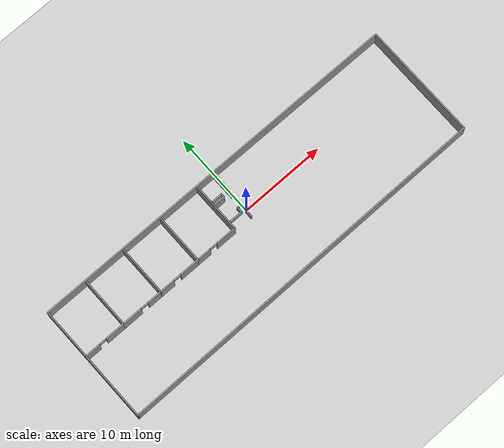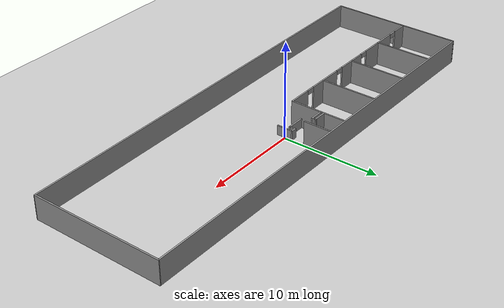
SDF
<sdf version="1.7">
 <world name="default">
  <light name="sun" type="directional">
   <pose>0 0 10 0 -0 0</pose>
   <diffuse>0.8 0.8 0.8 1</diffuse>
   <specular>0.2 0.2 0.2 1</specular>
   <attenuation>
    <range>1000</range>
    <constant>0.9</constant>
    <linear>0.01</linear>
    <quadratic>0.001</quadratic>
   </attenuation>
   <direction>-0.5 0.1 -0.9</direction>
   <spot><inner_angle>0</inner_angle><outer_angle>0</outer_angle><falloff>0</falloff></spot>
  </light>
  <model name="ground_plane">
   <static>1</static>
   <link name="link">
    <collision name="collision">
     <geometry><plane><normal>0 0 1</normal><size>100 100</size></plane></geometry>
     <surface>
      <contact><collide_bitmask>65535</collide_bitmask></contact>
      <friction><ode><mu>100</mu><mu2>50</mu2></ode></friction>
     </surface>
    </collision>
    <visual name="visual">
     <cast_shadows>0</cast_shadows>
     <geometry><plane><normal>0 0 1</normal><size>100 100</size></plane></geometry>
     <material>
      <script><uri>file://media/materials/scripts/gazebo.material</uri><name>Gazebo/Grey</name></script>
     </material>
    </visual>
   </link>
  </model>
  <gravity>0 0 -9.8</gravity>
  <magnetic_field>6e-06 2.3e-05 -4.2e-05</magnetic_field>
  <atmosphere type="adiabatic"/>
  <physics type="ode">
   <max_step_size>0.001</max_step_size>
   <real_time_factor>1</real_time_factor>
   <real_time_update_rate>1000</real_time_update_rate>
  </physics>
  <scene><ambient>0.4 0.4 0.4 1</ambient><background>0.7 0.7 0.7 1</background><shadows>1</shadows></scene>
  <audio><device>default</device></audio>
  <spherical_coordinates>
   <surface_model>EARTH_WGS84</surface_model>
   <latitude_deg>0</latitude_deg>
   <longitude_deg>0</longitude_deg>
   <elevation>0</elevation>
   <heading_deg>0</heading_deg>
  </spherical_coordinates>
  <model name="med_building">
   <link name="Wall_52">
    <pose>1e-06 6.90447 0 0 0 -0.004261</pose>
    <visual name="Wall_52_Visual">
     <pose>0 0 1.25 0 -0 0</pose>
     <geometry><box><size>45 0.15 2.5</size></box></geometry>
     <material>
      <script><uri>file://media/materials/scripts/gazebo.material</uri><name>Gazebo/Grey</name></script>
      <ambient>1 1 1 1</ambient>
      <shader type="pixel"/>
     </material>
     <meta><layer>0</layer></meta>
    </visual>
    <collision name="Wall_52_Collision">
     <pose>0 0 1.25 0 -0 0</pose>
     <geometry><box><size>45 0.15 2.5</size></box></geometry>
     <surface>
      <friction>
       <ode><mu>1</mu><mu2>1</mu2><fdir1>0 0 0</fdir1><slip1>0</slip1><slip2>0</slip2></ode>
       <torsional>
        <coefficient>1</coefficient>
        <patch_radius>0</patch_radius>
        <surface_radius>0</surface_radius>
        <use_patch_radius>1</use_patch_radius>
        <ode><slip>0</slip></ode>
       </torsional>
      </friction>
      <bounce><restitution_coefficient>0</restitution_coefficient><threshold>1e+06</threshold></bounce>
      <contact>
       <collide_without_contact>0</collide_without_contact>
       <collide_without_contact_bitmask>1</collide_without_contact_bitmask>
       <collide_bitmask>1</collide_bitmask>
       <ode>
        <soft_cfm>0</soft_cfm>
        <soft_erp>0.2</soft_erp>
        <kp>1e+13</kp>
        <kd>1</kd>
        <max_vel>0.01</max_vel>
        <min_depth>0</min_depth>
       </ode>
       <bullet>
        <split_impulse>1</split_impulse>
        <split_impulse_penetration_threshold>-0.01</split_impulse_penetration_threshold>
        <soft_cfm>0</soft_cfm>
        <soft_erp>0.2</soft_erp>
        <kp>1e+13</kp>
        <kd>1</kd>
       </bullet>
      </contact>
     </surface>
    </collision>
   </link>
   <link name="Wall_53">
    <pose>22.4252 0.008928 0 0 0 -1.5708</pose>
    <visual name="Wall_53_Visual">
     <pose>0 0 1.25 0 -0 0</pose>
     <geometry><box><size>13.75 0.15 2.5</size></box></geometry>
     <material>
      <script><uri>file://media/materials/scripts/gazebo.material</uri><name>Gazebo/Grey</name></script>
      <ambient>1 1 1 1</ambient>
      <shader type="pixel"/>
     </material>
     <meta><layer>0</layer></meta>
    </visual>
    <collision name="Wall_53_Collision">
     <pose>0 0 1.25 0 -0 0</pose>
     <geometry><box><size>13.75 0.15 2.5</size></box></geometry>
     <surface>
      <friction>
       <ode><mu>1</mu><mu2>1</mu2><fdir1>0 0 0</fdir1><slip1>0</slip1><slip2>0</slip2></ode>
       <torsional>
        <coefficient>1</coefficient>
        <patch_radius>0</patch_radius>
        <surface_radius>0</surface_radius>
        <use_patch_radius>1</use_patch_radius>
        <ode><slip>0</slip></ode>
       </torsional>
      </friction>
      <bounce><restitution_coefficient>0</restitution_coefficient><threshold>1e+06</threshold></bounce>
      <contact>
       <collide_without_contact>0</collide_without_contact>
       <collide_without_contact_bitmask>1</collide_without_contact_bitmask>
       <collide_bitmask>1</collide_bitmask>
       <ode>
        <soft_cfm>0</soft_cfm>
        <soft_erp>0.2</soft_erp>
        <kp>1e+13</kp>
        <kd>1</kd>
        <max_vel>0.01</max_vel>
        <min_depth>0</min_depth>
       </ode>
       <bullet>
        <split_impulse>1</split_impulse>
        <split_impulse_penetration_threshold>-0.01</split_impulse_penetration_threshold>
        <soft_cfm>0</soft_cfm>
        <soft_erp>0.2</soft_erp>
        <kp>1e+13</kp>
        <kd>1</kd>
       </bullet>
      </contact>
     </surface>
    </collision>
   </link>
   <link name="Wall_54">
    <pose>1e-06 -6.89553 0 0 0 -3.13693</pose>
    <visual name="Wall_54_Visual">
     <pose>0 0 1.25 0 -0 0</pose>
     <geometry><box><size>45.0008 0.15 2.5</size></box></geometry>
     <material>
      <script><uri>file://media/materials/scripts/gazebo.material</uri><name>Gazebo/Grey</name></script>
      <ambient>1 1 1 1</ambient>
      <shader type="pixel"/>
     </material>
     <meta><layer>0</layer></meta>
    </visual>
    <collision name="Wall_54_Collision">
     <pose>0 0 1.25 0 -0 0</pose>
     <geometry><box><size>45.0008 0.15 2.5</size></box></geometry>
     <surface>
      <friction>
       <ode><mu>1</mu><mu2>1</mu2><fdir1>0 0 0</fdir1><slip1>0</slip1><slip2>0</slip2></ode>
       <torsional>
        <coefficient>1</coefficient>
        <patch_radius>0</patch_radius>
        <surface_radius>0</surface_radius>
        <use_patch_radius>1</use_patch_radius>
        <ode><slip>0</slip></ode>
       </torsional>
      </friction>
      <bounce><restitution_coefficient>0</restitution_coefficient><threshold>1e+06</threshold></bounce>
      <contact>
       <collide_without_contact>0</collide_without_contact>
       <collide_without_contact_bitmask>1</collide_without_contact_bitmask>
       <collide_bitmask>1</collide_bitmask>
       <ode>
        <soft_cfm>0</soft_cfm>
        <soft_erp>0.2</soft_erp>
        <kp>1e+13</kp>
        <kd>1</kd>
        <max_vel>0.01</max_vel>
        <min_depth>0</min_depth>
       </ode>
       <bullet>
        <split_impulse>1</split_impulse>
        <split_impulse_penetration_threshold>-0.01</split_impulse_penetration_threshold>
        <soft_cfm>0</soft_cfm>
        <soft_erp>0.2</soft_erp>
        <kp>1e+13</kp>
        <kd>1</kd>
       </bullet>
      </contact>
     </surface>
    </collision>
   </link>
   <link name="Wall_55">
    <pose>-22.4252 1.5e-05 0 0 -0 1.5708</pose>
    <visual name="Wall_55_Visual">
     <pose>0 0 1.25 0 -0 0</pose>
     <geometry><box><size>14.15 0.15 2.5</size></box></geometry>
     <material>
      <script><uri>file://media/materials/scripts/gazebo.material</uri><name>Gazebo/Grey</name></script>
      <ambient>1 1 1 1</ambient>
      <shader type="pixel"/>
     </material>
     <meta><layer>0</layer></meta>
    </visual>
    <collision name="Wall_55_Collision">
     <pose>0 0 1.25 0 -0 0</pose>
     <geometry><box><size>14.15 0.15 2.5</size></box></geometry>
     <surface>
      <friction>
       <ode><mu>1</mu><mu2>1</mu2><fdir1>0 0 0</fdir1><slip1>0</slip1><slip2>0</slip2></ode>
       <torsional>
        <coefficient>1</coefficient>
        <patch_radius>0</patch_radius>
        <surface_radius>0</surface_radius>
        <use_patch_radius>1</use_patch_radius>
        <ode><slip>0</slip></ode>
       </torsional>
      </friction>
      <bounce><restitution_coefficient>0</restitution_coefficient><threshold>1e+06</threshold></bounce>
      <contact>
       <collide_without_contact>0</collide_without_contact>
       <collide_without_contact_bitmask>1</collide_without_contact_bitmask>
       <collide_bitmask>1</collide_bitmask>
       <ode>
        <soft_cfm>0</soft_cfm>
        <soft_erp>0.2</soft_erp>
        <kp>1e+13</kp>
        <kd>1</kd>
        <max_vel>0.01</max_vel>
        <min_depth>0</min_depth>
       </ode>
       <bullet>
        <split_impulse>1</split_impulse>
        <split_impulse_penetration_threshold>-0.01</split_impulse_penetration_threshold>
        <soft_cfm>0</soft_cfm>
        <soft_erp>0.2</soft_erp>
        <kp>1e+13</kp>
        <kd>1</kd>
       </bullet>
      </contact>
     </surface>
    </collision>
   </link>
   <link name="Wall_57">
    <pose>-19.9252 1.00002 0 0 -0 0</pose>
    <visual name="Wall_57_Visual_0">
     <pose>-1.64568 0 1.25 0 -0 0</pose>
     <geometry><box><size>1.85863 0.15 2.5</size></box></geometry>
     <material>
      <script><uri>file://media/materials/scripts/gazebo.material</uri><name>Gazebo/Grey</name></script>
      <ambient>1 1 1 1</ambient>
      <shader type="pixel"/>
     </material>
     <meta><layer>0</layer></meta>
    </visual>
    <visual name="Wall_57_Visual_1">
     <pose>1.37932 0 1.25 0 -0 0</pose>
     <geometry><box><size>2.39137 0.15 2.5</size></box></geometry>
     <material>
      <script><uri>file://media/materials/scripts/gazebo.material</uri><name>Gazebo/Grey</name></script>
      <ambient>1 1 1 1</ambient>
      <shader type="pixel"/>
     </material>
     <meta><layer>0</layer></meta>
    </visual>
    <visual name="Wall_57_Visual_2">
     <pose>-0.266367 0 2.25 0 -0 0</pose>
     <geometry><box><size>0.9 0.15 0.5</size></box></geometry>
     <material>
      <script><uri>file://media/materials/scripts/gazebo.material</uri><name>Gazebo/Grey</name></script>
      <ambient>1 1 1 1</ambient>
      <shader type="pixel"/>
     </material>
     <meta><layer>0</layer></meta>
    </visual>
    <collision name="Wall_57_Collision_0">
     <pose>-1.64568 0 1.25 0 -0 0</pose>
     <geometry><box><size>1.85863 0.15 2.5</size></box></geometry>
     <surface>
      <friction>
       <ode><mu>1</mu><mu2>1</mu2><fdir1>0 0 0</fdir1><slip1>0</slip1><slip2>0</slip2></ode>
       <torsional>
        <coefficient>1</coefficient>
        <patch_radius>0</patch_radius>
        <surface_radius>0</surface_radius>
        <use_patch_radius>1</use_patch_radius>
        <ode><slip>0</slip></ode>
       </torsional>
      </friction>
      <bounce><restitution_coefficient>0</restitution_coefficient><threshold>1e+06</threshold></bounce>
      <contact>
       <collide_without_contact>0</collide_without_contact>
       <collide_without_contact_bitmask>1</collide_without_contact_bitmask>
       <collide_bitmask>1</collide_bitmask>
       <ode>
        <soft_cfm>0</soft_cfm>
        <soft_erp>0.2</soft_erp>
        <kp>1e+13</kp>
        <kd>1</kd>
        <max_vel>0.01</max_vel>
        <min_depth>0</min_depth>
       </ode>
       <bullet>
        <split_impulse>1</split_impulse>
        <split_impulse_penetration_threshold>-0.01</split_impulse_penetration_threshold>
        <soft_cfm>0</soft_cfm>
        <soft_erp>0.2</soft_erp>
        <kp>1e+13</kp>
        <kd>1</kd>
       </bullet>
      </contact>
     </surface>
    </collision>
    <collision name="Wall_57_Collision_1">
     <pose>1.37932 0 1.25 0 -0 0</pose>
     <geometry><box><size>2.39137 0.15 2.5</size></box></geometry>
     <surface>
      <friction>
       <ode><mu>1</mu><mu2>1</mu2><fdir1>0 0 0</fdir1><slip1>0</slip1><slip2>0</slip2></ode>
       <torsional>
        <coefficient>1</coefficient>
        <patch_radius>0</patch_radius>
        <surface_radius>0</surface_radius>
        <use_patch_radius>1</use_patch_radius>
        <ode><slip>0</slip></ode>
       </torsional>
      </friction>
      <bounce><restitution_coefficient>0</restitution_coefficient><threshold>1e+06</threshold></bounce>
      <contact>
       <collide_without_contact>0</collide_without_contact>
       <collide_without_contact_bitmask>1</collide_without_contact_bitmask>
       <collide_bitmask>1</collide_bitmask>
       <ode>
        <soft_cfm>0</soft_cfm>
        <soft_erp>0.2</soft_erp>
        <kp>1e+13</kp>
        <kd>1</kd>
        <max_vel>0.01</max_vel>
        <min_depth>0</min_depth>
       </ode>
       <bullet>
        <split_impulse>1</split_impulse>
        <split_impulse_penetration_threshold>-0.01</split_impulse_penetration_threshold>
        <soft_cfm>0</soft_cfm>
        <soft_erp>0.2</soft_erp>
        <kp>1e+13</kp>
        <kd>1</kd>
       </bullet>
      </contact>
     </surface>
    </collision>
    <collision name="Wall_57_Collision_2">
     <pose>-0.266367 0 2.25 0 -0 0</pose>
     <geometry><box><size>0.9 0.15 0.5</size></box></geometry>
     <surface>
      <friction>
       <ode><mu>1</mu><mu2>1</mu2><fdir1>0 0 0</fdir1><slip1>0</slip1><slip2>0</slip2></ode>
       <torsional>
        <coefficient>1</coefficient>
        <patch_radius>0</patch_radius>
        <surface_radius>0</surface_radius>
        <use_patch_radius>1</use_patch_radius>
        <ode><slip>0</slip></ode>
       </torsional>
      </friction>
      <bounce><restitution_coefficient>0</restitution_coefficient><threshold>1e+06</threshold></bounce>
      <contact>
       <collide_without_contact>0</collide_without_contact>
       <collide_without_contact_bitmask>1</collide_without_contact_bitmask>
       <collide_bitmask>1</collide_bitmask>
       <ode>
        <soft_cfm>0</soft_cfm>
        <soft_erp>0.2</soft_erp>
        <kp>1e+13</kp>
        <kd>1</kd>
        <max_vel>0.01</max_vel>
        <min_depth>0</min_depth>
       </ode>
       <bullet>
        <split_impulse>1</split_impulse>
        <split_impulse_penetration_threshold>-0.01</split_impulse_penetration_threshold>
        <soft_cfm>0</soft_cfm>
        <soft_erp>0.2</soft_erp>
        <kp>1e+13</kp>
        <kd>1</kd>
       </bullet>
      </contact>
     </surface>
    </collision>
   </link>
   <link name="Wall_58">
    <pose>-17.4252 3.92502 0 0 -0 1.5708</pose>
    <visual name="Wall_58_Visual">
     <pose>0 0 1.25 0 -0 0</pose>
     <geometry><box><size>6 0.15 2.5</size></box></geometry>
     <material>
      <script><uri>file://media/materials/scripts/gazebo.material</uri><name>Gazebo/Grey</name></script>
      <ambient>1 1 1 1</ambient>
      <shader type="pixel"/>
     </material>
     <meta><layer>0</layer></meta>
    </visual>
    <collision name="Wall_58_Collision">
     <pose>0 0 1.25 0 -0 0</pose>
     <geometry><box><size>6 0.15 2.5</size></box></geometry>
     <surface>
      <friction>
       <ode><mu>1</mu><mu2>1</mu2><fdir1>0 0 0</fdir1><slip1>0</slip1><slip2>0</slip2></ode>
       <torsional>
        <coefficient>1</coefficient>
        <patch_radius>0</patch_radius>
        <surface_radius>0</surface_radius>
        <use_patch_radius>1</use_patch_radius>
        <ode><slip>0</slip></ode>
       </torsional>
      </friction>
      <bounce><restitution_coefficient>0</restitution_coefficient><threshold>1e+06</threshold></bounce>
      <contact>
       <collide_without_contact>0</collide_without_contact>
       <collide_without_contact_bitmask>1</collide_without_contact_bitmask>
       <collide_bitmask>1</collide_bitmask>
       <ode>
        <soft_cfm>0</soft_cfm>
        <soft_erp>0.2</soft_erp>
        <kp>1e+13</kp>
        <kd>1</kd>
        <max_vel>0.01</max_vel>
        <min_depth>0</min_depth>
       </ode>
       <bullet>
        <split_impulse>1</split_impulse>
        <split_impulse_penetration_threshold>-0.01</split_impulse_penetration_threshold>
        <soft_cfm>0</soft_cfm>
        <soft_erp>0.2</soft_erp>
        <kp>1e+13</kp>
        <kd>1</kd>
       </bullet>
      </contact>
     </surface>
    </collision>
   </link>
   <link name="Wall_60">
    <pose>-14.9252 1.00002 0 0 -0 0</pose>
    <visual name="Wall_60_Visual_0">
     <pose>-1.36037 0 1.25 0 -0 0</pose>
     <geometry><box><size>2.42925 0.15 2.5</size></box></geometry>
     <material>
      <script><uri>file://media/materials/scripts/gazebo.material</uri><name>Gazebo/Grey</name></script>
      <ambient>1 1 1 1</ambient>
      <shader type="pixel"/>
     </material>
     <meta><layer>0</layer></meta>
    </visual>
    <visual name="Wall_60_Visual_1">
     <pose>1.66463 0 1.25 0 -0 0</pose>
     <geometry><box><size>1.82075 0.15 2.5</size></box></geometry>
     <material>
      <script><uri>file://media/materials/scripts/gazebo.material</uri><name>Gazebo/Grey</name></script>
      <ambient>1 1 1 1</ambient>
      <shader type="pixel"/>
     </material>
     <meta><layer>0</layer></meta>
    </visual>
    <visual name="Wall_60_Visual_2">
     <pose>0.304252 0 2.25 0 -0 0</pose>
     <geometry><box><size>0.9 0.15 0.5</size></box></geometry>
     <material>
      <script><uri>file://media/materials/scripts/gazebo.material</uri><name>Gazebo/Grey</name></script>
      <ambient>1 1 1 1</ambient>
      <shader type="pixel"/>
     </material>
     <meta><layer>0</layer></meta>
    </visual>
    <collision name="Wall_60_Collision_0">
     <pose>-1.36037 0 1.25 0 -0 0</pose>
     <geometry><box><size>2.42925 0.15 2.5</size></box></geometry>
     <surface>
      <friction>
       <ode><mu>1</mu><mu2>1</mu2><fdir1>0 0 0</fdir1><slip1>0</slip1><slip2>0</slip2></ode>
       <torsional>
        <coefficient>1</coefficient>
        <patch_radius>0</patch_radius>
        <surface_radius>0</surface_radius>
        <use_patch_radius>1</use_patch_radius>
        <ode><slip>0</slip></ode>
       </torsional>
      </friction>
      <bounce><restitution_coefficient>0</restitution_coefficient><threshold>1e+06</threshold></bounce>
      <contact>
       <collide_without_contact>0</collide_without_contact>
       <collide_without_contact_bitmask>1</collide_without_contact_bitmask>
       <collide_bitmask>1</collide_bitmask>
       <ode>
        <soft_cfm>0</soft_cfm>
        <soft_erp>0.2</soft_erp>
        <kp>1e+13</kp>
        <kd>1</kd>
        <max_vel>0.01</max_vel>
        <min_depth>0</min_depth>
       </ode>
       <bullet>
        <split_impulse>1</split_impulse>
        <split_impulse_penetration_threshold>-0.01</split_impulse_penetration_threshold>
        <soft_cfm>0</soft_cfm>
        <soft_erp>0.2</soft_erp>
        <kp>1e+13</kp>
        <kd>1</kd>
       </bullet>
      </contact>
     </surface>
    </collision>
    <collision name="Wall_60_Collision_1">
     <pose>1.66463 0 1.25 0 -0 0</pose>
     <geometry><box><size>1.82075 0.15 2.5</size></box></geometry>
     <surface>
      <friction>
       <ode><mu>1</mu><mu2>1</mu2><fdir1>0 0 0</fdir1><slip1>0</slip1><slip2>0</slip2></ode>
       <torsional>
        <coefficient>1</coefficient>
        <patch_radius>0</patch_radius>
        <surface_radius>0</surface_radius>
        <use_patch_radius>1</use_patch_radius>
        <ode><slip>0</slip></ode>
       </torsional>
      </friction>
      <bounce><restitution_coefficient>0</restitution_coefficient><threshold>1e+06</threshold></bounce>
      <contact>
       <collide_without_contact>0</collide_without_contact>
       <collide_without_contact_bitmask>1</collide_without_contact_bitmask>
       <collide_bitmask>1</collide_bitmask>
       <ode>
        <soft_cfm>0</soft_cfm>
        <soft_erp>0.2</soft_erp>
        <kp>1e+13</kp>
        <kd>1</kd>
        <max_vel>0.01</max_vel>
        <min_depth>0</min_depth>
       </ode>
       <bullet>
        <split_impulse>1</split_impulse>
        <split_impulse_penetration_threshold>-0.01</split_impulse_penetration_threshold>
        <soft_cfm>0</soft_cfm>
        <soft_erp>0.2</soft_erp>
        <kp>1e+13</kp>
        <kd>1</kd>
       </bullet>
      </contact>
     </surface>
    </collision>
    <collision name="Wall_60_Collision_2">
     <pose>0.304252 0 2.25 0 -0 0</pose>
     <geometry><box><size>0.9 0.15 0.5</size></box></geometry>
     <surface>
      <friction>
       <ode><mu>1</mu><mu2>1</mu2><fdir1>0 0 0</fdir1><slip1>0</slip1><slip2>0</slip2></ode>
       <torsional>
        <coefficient>1</coefficient>
        <patch_radius>0</patch_radius>
        <surface_radius>0</surface_radius>
        <use_patch_radius>1</use_patch_radius>
        <ode><slip>0</slip></ode>
       </torsional>
      </friction>
      <bounce><restitution_coefficient>0</restitution_coefficient><threshold>1e+06</threshold></bounce>
      <contact>
       <collide_without_contact>0</collide_without_contact>
       <collide_without_contact_bitmask>1</collide_without_contact_bitmask>
       <collide_bitmask>1</collide_bitmask>
       <ode>
        <soft_cfm>0</soft_cfm>
        <soft_erp>0.2</soft_erp>
        <kp>1e+13</kp>
        <kd>1</kd>
        <max_vel>0.01</max_vel>
        <min_depth>0</min_depth>
       </ode>
       <bullet>
        <split_impulse>1</split_impulse>
        <split_impulse_penetration_threshold>-0.01</split_impulse_penetration_threshold>
        <soft_cfm>0</soft_cfm>
        <soft_erp>0.2</soft_erp>
        <kp>1e+13</kp>
        <kd>1</kd>
       </bullet>
      </contact>
     </surface>
    </collision>
   </link>
   <link name="Wall_61">
    <pose>-12.4252 3.92502 0 0 -0 1.5708</pose>
    <visual name="Wall_61_Visual">
     <pose>0 0 1.25 0 -0 0</pose>
     <geometry><box><size>6 0.15 2.5</size></box></geometry>
     <material>
      <script><uri>file://media/materials/scripts/gazebo.material</uri><name>Gazebo/Grey</name></script>
      <ambient>1 1 1 1</ambient>
      <shader type="pixel"/>
     </material>
     <meta><layer>0</layer></meta>
    </visual>
    <collision name="Wall_61_Collision">
     <pose>0 0 1.25 0 -0 0</pose>
     <geometry><box><size>6 0.15 2.5</size></box></geometry>
     <surface>
      <friction>
       <ode><mu>1</mu><mu2>1</mu2><fdir1>0 0 0</fdir1><slip1>0</slip1><slip2>0</slip2></ode>
       <torsional>
        <coefficient>1</coefficient>
        <patch_radius>0</patch_radius>
        <surface_radius>0</surface_radius>
        <use_patch_radius>1</use_patch_radius>
        <ode><slip>0</slip></ode>
       </torsional>
      </friction>
      <bounce><restitution_coefficient>0</restitution_coefficient><threshold>1e+06</threshold></bounce>
      <contact>
       <collide_without_contact>0</collide_without_contact>
       <collide_without_contact_bitmask>1</collide_without_contact_bitmask>
       <collide_bitmask>1</collide_bitmask>
       <ode>
        <soft_cfm>0</soft_cfm>
        <soft_erp>0.2</soft_erp>
        <kp>1e+13</kp>
        <kd>1</kd>
        <max_vel>0.01</max_vel>
        <min_depth>0</min_depth>
       </ode>
       <bullet>
        <split_impulse>1</split_impulse>
        <split_impulse_penetration_threshold>-0.01</split_impulse_penetration_threshold>
        <soft_cfm>0</soft_cfm>
        <soft_erp>0.2</soft_erp>
        <kp>1e+13</kp>
        <kd>1</kd>
       </bullet>
      </contact>
     </surface>
    </collision>
   </link>
   <link name="Wall_63">
    <pose>-9.92516 1.00002 0 0 -0 0</pose>
    <visual name="Wall_63_Visual_0">
     <pose>-1.6625 0 1.25 0 -0 0</pose>
     <geometry><box><size>1.825 0.15 2.5</size></box></geometry>
     <material>
      <script><uri>file://media/materials/scripts/gazebo.material</uri><name>Gazebo/Grey</name></script>
      <ambient>1 1 1 1</ambient>
      <shader type="pixel"/>
     </material>
     <meta><layer>0</layer></meta>
    </visual>
    <visual name="Wall_63_Visual_1">
     <pose>1.3625 0 1.25 0 -0 0</pose>
     <geometry><box><size>2.425 0.15 2.5</size></box></geometry>
     <material>
      <script><uri>file://media/materials/scripts/gazebo.material</uri><name>Gazebo/Grey</name></script>
      <ambient>1 1 1 1</ambient>
      <shader type="pixel"/>
     </material>
     <meta><layer>0</layer></meta>
    </visual>
    <visual name="Wall_63_Visual_2">
     <pose>-0.3 0 2.25 0 -0 0</pose>
     <geometry><box><size>0.9 0.15 0.5</size></box></geometry>
     <material>
      <script><uri>file://media/materials/scripts/gazebo.material</uri><name>Gazebo/Grey</name></script>
      <ambient>1 1 1 1</ambient>
      <shader type="pixel"/>
     </material>
     <meta><layer>0</layer></meta>
    </visual>
    <collision name="Wall_63_Collision_0">
     <pose>-1.6625 0 1.25 0 -0 0</pose>
     <geometry><box><size>1.825 0.15 2.5</size></box></geometry>
     <surface>
      <friction>
       <ode><mu>1</mu><mu2>1</mu2><fdir1>0 0 0</fdir1><slip1>0</slip1><slip2>0</slip2></ode>
       <torsional>
        <coefficient>1</coefficient>
        <patch_radius>0</patch_radius>
        <surface_radius>0</surface_radius>
        <use_patch_radius>1</use_patch_radius>
        <ode><slip>0</slip></ode>
       </torsional>
      </friction>
      <bounce><restitution_coefficient>0</restitution_coefficient><threshold>1e+06</threshold></bounce>
      <contact>
       <collide_without_contact>0</collide_without_contact>
       <collide_without_contact_bitmask>1</collide_without_contact_bitmask>
       <collide_bitmask>1</collide_bitmask>
       <ode>
        <soft_cfm>0</soft_cfm>
        <soft_erp>0.2</soft_erp>
        <kp>1e+13</kp>
        <kd>1</kd>
        <max_vel>0.01</max_vel>
        <min_depth>0</min_depth>
       </ode>
       <bullet>
        <split_impulse>1</split_impulse>
        <split_impulse_penetration_threshold>-0.01</split_impulse_penetration_threshold>
        <soft_cfm>0</soft_cfm>
        <soft_erp>0.2</soft_erp>
        <kp>1e+13</kp>
        <kd>1</kd>
       </bullet>
      </contact>
     </surface>
    </collision>
    <collision name="Wall_63_Collision_1">
     <pose>1.3625 0 1.25 0 -0 0</pose>
     <geometry><box><size>2.425 0.15 2.5</size></box></geometry>
     <surface>
      <friction>
       <ode><mu>1</mu><mu2>1</mu2><fdir1>0 0 0</fdir1><slip1>0</slip1><slip2>0</slip2></ode>
       <torsional>
        <coefficient>1</coefficient>
        <patch_radius>0</patch_radius>
        <surface_radius>0</surface_radius>
        <use_patch_radius>1</use_patch_radius>
        <ode><slip>0</slip></ode>
       </torsional>
      </friction>
      <bounce><restitution_coefficient>0</restitution_coefficient><threshold>1e+06</threshold></bounce>
      <contact>
       <collide_without_contact>0</collide_without_contact>
       <collide_without_contact_bitmask>1</collide_without_contact_bitmask>
       <collide_bitmask>1</collide_bitmask>
       <ode>
        <soft_cfm>0</soft_cfm>
        <soft_erp>0.2</soft_erp>
        <kp>1e+13</kp>
        <kd>1</kd>
        <max_vel>0.01</max_vel>
        <min_depth>0</min_depth>
       </ode>
       <bullet>
        <split_impulse>1</split_impulse>
        <split_impulse_penetration_threshold>-0.01</split_impulse_penetration_threshold>
        <soft_cfm>0</soft_cfm>
        <soft_erp>0.2</soft_erp>
        <kp>1e+13</kp>
        <kd>1</kd>
       </bullet>
      </contact>
     </surface>
    </collision>
    <collision name="Wall_63_Collision_2">
     <pose>-0.3 0 2.25 0 -0 0</pose>
     <geometry><box><size>0.9 0.15 0.5</size></box></geometry>
     <surface>
      <friction>
       <ode><mu>1</mu><mu2>1</mu2><fdir1>0 0 0</fdir1><slip1>0</slip1><slip2>0</slip2></ode>
       <torsional>
        <coefficient>1</coefficient>
        <patch_radius>0</patch_radius>
        <surface_radius>0</surface_radius>
        <use_patch_radius>1</use_patch_radius>
        <ode><slip>0</slip></ode>
       </torsional>
      </friction>
      <bounce><restitution_coefficient>0</restitution_coefficient><threshold>1e+06</threshold></bounce>
      <contact>
       <collide_without_contact>0</collide_without_contact>
       <collide_without_contact_bitmask>1</collide_without_contact_bitmask>
       <collide_bitmask>1</collide_bitmask>
       <ode>
        <soft_cfm>0</soft_cfm>
        <soft_erp>0.2</soft_erp>
        <kp>1e+13</kp>
        <kd>1</kd>
        <max_vel>0.01</max_vel>
        <min_depth>0</min_depth>
       </ode>
       <bullet>
        <split_impulse>1</split_impulse>
        <split_impulse_penetration_threshold>-0.01</split_impulse_penetration_threshold>
        <soft_cfm>0</soft_cfm>
        <soft_erp>0.2</soft_erp>
        <kp>1e+13</kp>
        <kd>1</kd>
       </bullet>
      </contact>
     </surface>
    </collision>
   </link>
   <link name="Wall_64">
    <pose>-7.42516 3.92502 0 0 -0 1.5708</pose>
    <visual name="Wall_64_Visual">
     <pose>0 0 1.25 0 -0 0</pose>
     <geometry><box><size>6 0.15 2.5</size></box></geometry>
     <material>
      <script><uri>file://media/materials/scripts/gazebo.material</uri><name>Gazebo/Grey</name></script>
      <ambient>1 1 1 1</ambient>
      <shader type="pixel"/>
     </material>
     <meta><layer>0</layer></meta>
    </visual>
    <collision name="Wall_64_Collision">
     <pose>0 0 1.25 0 -0 0</pose>
     <geometry><box><size>6 0.15 2.5</size></box></geometry>
     <surface>
      <friction>
       <ode><mu>1</mu><mu2>1</mu2><fdir1>0 0 0</fdir1><slip1>0</slip1><slip2>0</slip2></ode>
       <torsional>
        <coefficient>1</coefficient>
        <patch_radius>0</patch_radius>
        <surface_radius>0</surface_radius>
        <use_patch_radius>1</use_patch_radius>
        <ode><slip>0</slip></ode>
       </torsional>
      </friction>
      <bounce><restitution_coefficient>0</restitution_coefficient><threshold>1e+06</threshold></bounce>
      <contact>
       <collide_without_contact>0</collide_without_contact>
       <collide_without_contact_bitmask>1</collide_without_contact_bitmask>
       <collide_bitmask>1</collide_bitmask>
       <ode>
        <soft_cfm>0</soft_cfm>
        <soft_erp>0.2</soft_erp>
        <kp>1e+13</kp>
        <kd>1</kd>
        <max_vel>0.01</max_vel>
        <min_depth>0</min_depth>
       </ode>
       <bullet>
        <split_impulse>1</split_impulse>
        <split_impulse_penetration_threshold>-0.01</split_impulse_penetration_threshold>
        <soft_cfm>0</soft_cfm>
        <soft_erp>0.2</soft_erp>
        <kp>1e+13</kp>
        <kd>1</kd>
       </bullet>
      </contact>
     </surface>
    </collision>
   </link>
   <link name="Wall_66">
    <pose>-4.92516 1.00002 0 0 -0 0</pose>
    <visual name="Wall_66_Visual_0">
     <pose>-1.69749 0 1.25 0 -0 0</pose>
     <geometry><box><size>1.75502 0.15 2.5</size></box></geometry>
     <material>
      <script><uri>file://media/materials/scripts/gazebo.material</uri><name>Gazebo/Grey</name></script>
      <ambient>1 1 1 1</ambient>
      <shader type="pixel"/>
     </material>
     <meta><layer>0</layer></meta>
    </visual>
    <visual name="Wall_66_Visual_1">
     <pose>1.32751 0 1.25 0 -0 0</pose>
     <geometry><box><size>2.49498 0.15 2.5</size></box></geometry>
     <material>
      <script><uri>file://media/materials/scripts/gazebo.material</uri><name>Gazebo/Grey</name></script>
      <ambient>1 1 1 1</ambient>
      <shader type="pixel"/>
     </material>
     <meta><layer>0</layer></meta>
    </visual>
    <visual name="Wall_66_Visual_2">
     <pose>-0.369977 0 2.25 0 -0 0</pose>
     <geometry><box><size>0.9 0.15 0.5</size></box></geometry>
     <material>
      <script><uri>file://media/materials/scripts/gazebo.material</uri><name>Gazebo/Grey</name></script>
      <ambient>1 1 1 1</ambient>
      <shader type="pixel"/>
     </material>
     <meta><layer>0</layer></meta>
    </visual>
    <collision name="Wall_66_Collision_0">
     <pose>-1.69749 0 1.25 0 -0 0</pose>
     <geometry><box><size>1.75502 0.15 2.5</size></box></geometry>
     <surface>
      <friction>
       <ode><mu>1</mu><mu2>1</mu2><fdir1>0 0 0</fdir1><slip1>0</slip1><slip2>0</slip2></ode>
       <torsional>
        <coefficient>1</coefficient>
        <patch_radius>0</patch_radius>
        <surface_radius>0</surface_radius>
        <use_patch_radius>1</use_patch_radius>
        <ode><slip>0</slip></ode>
       </torsional>
      </friction>
      <bounce><restitution_coefficient>0</restitution_coefficient><threshold>1e+06</threshold></bounce>
      <contact>
       <collide_without_contact>0</collide_without_contact>
       <collide_without_contact_bitmask>1</collide_without_contact_bitmask>
       <collide_bitmask>1</collide_bitmask>
       <ode>
        <soft_cfm>0</soft_cfm>
        <soft_erp>0.2</soft_erp>
        <kp>1e+13</kp>
        <kd>1</kd>
        <max_vel>0.01</max_vel>
        <min_depth>0</min_depth>
       </ode>
       <bullet>
        <split_impulse>1</split_impulse>
        <split_impulse_penetration_threshold>-0.01</split_impulse_penetration_threshold>
        <soft_cfm>0</soft_cfm>
        <soft_erp>0.2</soft_erp>
        <kp>1e+13</kp>
        <kd>1</kd>
       </bullet>
      </contact>
     </surface>
    </collision>
    <collision name="Wall_66_Collision_1">
     <pose>1.32751 0 1.25 0 -0 0</pose>
     <geometry><box><size>2.49498 0.15 2.5</size></box></geometry>
     <surface>
      <friction>
       <ode><mu>1</mu><mu2>1</mu2><fdir1>0 0 0</fdir1><slip1>0</slip1><slip2>0</slip2></ode>
       <torsional>
        <coefficient>1</coefficient>
        <patch_radius>0</patch_radius>
        <surface_radius>0</surface_radius>
        <use_patch_radius>1</use_patch_radius>
        <ode><slip>0</slip></ode>
       </torsional>
      </friction>
      <bounce><restitution_coefficient>0</restitution_coefficient><threshold>1e+06</threshold></bounce>
      <contact>
       <collide_without_contact>0</collide_without_contact>
       <collide_without_contact_bitmask>1</collide_without_contact_bitmask>
       <collide_bitmask>1</collide_bitmask>
       <ode>
        <soft_cfm>0</soft_cfm>
        <soft_erp>0.2</soft_erp>
        <kp>1e+13</kp>
        <kd>1</kd>
        <max_vel>0.01</max_vel>
        <min_depth>0</min_depth>
       </ode>
       <bullet>
        <split_impulse>1</split_impulse>
        <split_impulse_penetration_threshold>-0.01</split_impulse_penetration_threshold>
        <soft_cfm>0</soft_cfm>
        <soft_erp>0.2</soft_erp>
        <kp>1e+13</kp>
        <kd>1</kd>
       </bullet>
      </contact>
     </surface>
    </collision>
    <collision name="Wall_66_Collision_2">
     <pose>-0.369977 0 2.25 0 -0 0</pose>
     <geometry><box><size>0.9 0.15 0.5</size></box></geometry>
     <surface>
      <friction>
       <ode><mu>1</mu><mu2>1</mu2><fdir1>0 0 0</fdir1><slip1>0</slip1><slip2>0</slip2></ode>
       <torsional>
        <coefficient>1</coefficient>
        <patch_radius>0</patch_radius>
        <surface_radius>0</surface_radius>
        <use_patch_radius>1</use_patch_radius>
        <ode><slip>0</slip></ode>
       </torsional>
      </friction>
      <bounce><restitution_coefficient>0</restitution_coefficient><threshold>1e+06</threshold></bounce>
      <contact>
       <collide_without_contact>0</collide_without_contact>
       <collide_without_contact_bitmask>1</collide_without_contact_bitmask>
       <collide_bitmask>1</collide_bitmask>
       <ode>
        <soft_cfm>0</soft_cfm>
        <soft_erp>0.2</soft_erp>
        <kp>1e+13</kp>
        <kd>1</kd>
        <max_vel>0.01</max_vel>
        <min_depth>0</min_depth>
       </ode>
       <bullet>
        <split_impulse>1</split_impulse>
        <split_impulse_penetration_threshold>-0.01</split_impulse_penetration_threshold>
        <soft_cfm>0</soft_cfm>
        <soft_erp>0.2</soft_erp>
        <kp>1e+13</kp>
        <kd>1</kd>
       </bullet>
      </contact>
     </surface>
    </collision>
   </link>
   <link name="Wall_67">
    <pose>-2.42516 3.92502 0 0 -0 1.5708</pose>
    <visual name="Wall_67_Visual">
     <pose>0 0 1.25 0 -0 0</pose>
     <geometry><box><size>6 0.15 2.5</size></box></geometry>
     <material>
      <script><uri>file://media/materials/scripts/gazebo.material</uri><name>Gazebo/Grey</name></script>
      <ambient>1 1 1 1</ambient>
      <shader type="pixel"/>
     </material>
     <meta><layer>0</layer></meta>
    </visual>
    <collision name="Wall_67_Collision">
     <pose>0 0 1.25 0 -0 0</pose>
     <geometry><box><size>6 0.15 2.5</size></box></geometry>
     <surface>
      <friction>
       <ode><mu>1</mu><mu2>1</mu2><fdir1>0 0 0</fdir1><slip1>0</slip1><slip2>0</slip2></ode>
       <torsional>
        <coefficient>1</coefficient>
        <patch_radius>0</patch_radius>
        <surface_radius>0</surface_radius>
        <use_patch_radius>1</use_patch_radius>
        <ode><slip>0</slip></ode>
       </torsional>
      </friction>
      <bounce><restitution_coefficient>0</restitution_coefficient><threshold>1e+06</threshold></bounce>
      <contact>
       <collide_without_contact>0</collide_without_contact>
       <collide_without_contact_bitmask>1</collide_without_contact_bitmask>
       <collide_bitmask>1</collide_bitmask>
       <ode>
        <soft_cfm>0</soft_cfm>
        <soft_erp>0.2</soft_erp>
        <kp>1e+13</kp>
        <kd>1</kd>
        <max_vel>0.01</max_vel>
        <min_depth>0</min_depth>
       </ode>
       <bullet>
        <split_impulse>1</split_impulse>
        <split_impulse_penetration_threshold>-0.01</split_impulse_penetration_threshold>
        <soft_cfm>0</soft_cfm>
        <soft_erp>0.2</soft_erp>
        <kp>1e+13</kp>
        <kd>1</kd>
       </bullet>
      </contact>
     </surface>
    </collision>
   </link>
   <link name="Wall_69">
    <pose>-1.74382 4.24437 0 0 -0 0</pose>
    <visual name="Wall_69_Visual">
     <pose>0 0 1.25 0 -0 0</pose>
     <geometry><box><size>1.5 0.15 2.5</size></box></geometry>
     <material>
      <script><uri>file://media/materials/scripts/gazebo.material</uri><name>Gazebo/Grey</name></script>
      <ambient>1 1 1 1</ambient>
      <shader type="pixel"/>
     </material>
     <meta><layer>0</layer></meta>
    </visual>
    <collision name="Wall_69_Collision">
     <pose>0 0 1.25 0 -0 0</pose>
     <geometry><box><size>1.5 0.15 2.5</size></box></geometry>
     <surface>
      <friction>
       <ode><mu>1</mu><mu2>1</mu2><fdir1>0 0 0</fdir1><slip1>0</slip1><slip2>0</slip2></ode>
       <torsional>
        <coefficient>1</coefficient>
        <patch_radius>0</patch_radius>
        <surface_radius>0</surface_radius>
        <use_patch_radius>1</use_patch_radius>
        <ode><slip>0</slip></ode>
       </torsional>
      </friction>
      <bounce><restitution_coefficient>0</restitution_coefficient><threshold>1e+06</threshold></bounce>
      <contact>
       <collide_without_contact>0</collide_without_contact>
       <collide_without_contact_bitmask>1</collide_without_contact_bitmask>
       <collide_bitmask>1</collide_bitmask>
       <ode>
        <soft_cfm>0</soft_cfm>
        <soft_erp>0.2</soft_erp>
        <kp>1e+13</kp>
        <kd>1</kd>
        <max_vel>0.01</max_vel>
        <min_depth>0</min_depth>
       </ode>
       <bullet>
        <split_impulse>1</split_impulse>
        <split_impulse_penetration_threshold>-0.01</split_impulse_penetration_threshold>
        <soft_cfm>0</soft_cfm>
        <soft_erp>0.2</soft_erp>
        <kp>1e+13</kp>
        <kd>1</kd>
       </bullet>
      </contact>
     </surface>
    </collision>
   </link>
   <link name="Wall_70">
    <pose>-1.06882 4.41937 0 0 -0 1.5708</pose>
    <visual name="Wall_70_Visual">
     <pose>0 0 1.25 0 -0 0</pose>
     <geometry><box><size>0.5 0.15 2.5</size></box></geometry>
     <material>
      <script><uri>file://media/materials/scripts/gazebo.material</uri><name>Gazebo/Grey</name></script>
      <ambient>1 1 1 1</ambient>
      <shader type="pixel"/>
     </material>
     <meta><layer>0</layer></meta>
    </visual>
    <collision name="Wall_70_Collision">
     <pose>0 0 1.25 0 -0 0</pose>
     <geometry><box><size>0.5 0.15 2.5</size></box></geometry>
     <surface>
      <friction>
       <ode><mu>1</mu><mu2>1</mu2><fdir1>0 0 0</fdir1><slip1>0</slip1><slip2>0</slip2></ode>
       <torsional>
        <coefficient>1</coefficient>
        <patch_radius>0</patch_radius>
        <surface_radius>0</surface_radius>
        <use_patch_radius>1</use_patch_radius>
        <ode><slip>0</slip></ode>
       </torsional>
      </friction>
      <bounce><restitution_coefficient>0</restitution_coefficient><threshold>1e+06</threshold></bounce>
      <contact>
       <collide_without_contact>0</collide_without_contact>
       <collide_without_contact_bitmask>1</collide_without_contact_bitmask>
       <collide_bitmask>1</collide_bitmask>
       <ode>
        <soft_cfm>0</soft_cfm>
        <soft_erp>0.2</soft_erp>
        <kp>1e+13</kp>
        <kd>1</kd>
        <max_vel>0.01</max_vel>
        <min_depth>0</min_depth>
       </ode>
       <bullet>
        <split_impulse>1</split_impulse>
        <split_impulse_penetration_threshold>-0.01</split_impulse_penetration_threshold>
        <soft_cfm>0</soft_cfm>
        <soft_erp>0.2</soft_erp>
        <kp>1e+13</kp>
        <kd>1</kd>
       </bullet>
      </contact>
     </surface>
    </collision>
   </link>
   <link name="Wall_71">
    <pose>-1.74382 4.59437 0 0 -0 3.14159</pose>
    <visual name="Wall_71_Visual">
     <pose>0 0 1.25 0 -0 0</pose>
     <geometry><box><size>1.5 0.15 2.5</size></box></geometry>
     <material>
      <script><uri>file://media/materials/scripts/gazebo.material</uri><name>Gazebo/Grey</name></script>
      <ambient>1 1 1 1</ambient>
      <shader type="pixel"/>
     </material>
     <meta><layer>0</layer></meta>
    </visual>
    <collision name="Wall_71_Collision">
     <pose>0 0 1.25 0 -0 0</pose>
     <geometry><box><size>1.5 0.15 2.5</size></box></geometry>
     <surface>
      <friction>
       <ode><mu>1</mu><mu2>1</mu2><fdir1>0 0 0</fdir1><slip1>0</slip1><slip2>0</slip2></ode>
       <torsional>
        <coefficient>1</coefficient>
        <patch_radius>0</patch_radius>
        <surface_radius>0</surface_radius>
        <use_patch_radius>1</use_patch_radius>
        <ode><slip>0</slip></ode>
       </torsional>
      </friction>
      <bounce><restitution_coefficient>0</restitution_coefficient><threshold>1e+06</threshold></bounce>
      <contact>
       <collide_without_contact>0</collide_without_contact>
       <collide_without_contact_bitmask>1</collide_without_contact_bitmask>
       <collide_bitmask>1</collide_bitmask>
       <ode>
        <soft_cfm>0</soft_cfm>
        <soft_erp>0.2</soft_erp>
        <kp>1e+13</kp>
        <kd>1</kd>
        <max_vel>0.01</max_vel>
        <min_depth>0</min_depth>
       </ode>
       <bullet>
        <split_impulse>1</split_impulse>
        <split_impulse_penetration_threshold>-0.01</split_impulse_penetration_threshold>
        <soft_cfm>0</soft_cfm>
        <soft_erp>0.2</soft_erp>
        <kp>1e+13</kp>
        <kd>1</kd>
       </bullet>
      </contact>
     </surface>
    </collision>
   </link>
   <link name="Wall_73">
    <pose>-1.47716 2.09002 0 0 -0 0</pose>
    <visual name="Wall_73_Visual">
     <pose>0 0 0.5 0 -0 0</pose>
     <geometry><box><size>2 0.15 1</size></box></geometry>
     <material>
      <script><uri>file://media/materials/scripts/gazebo.material</uri><name>Gazebo/Grey</name></script>
      <ambient>1 1 1 1</ambient>
      <shader type="pixel"/>
     </material>
     <meta><layer>0</layer></meta>
    </visual>
    <collision name="Wall_73_Collision">
     <pose>0 0 0.5 0 -0 0</pose>
     <geometry><box><size>2 0.15 1</size></box></geometry>
     <surface>
      <friction>
       <ode><mu>1</mu><mu2>1</mu2><fdir1>0 0 0</fdir1><slip1>0</slip1><slip2>0</slip2></ode>
       <torsional>
        <coefficient>1</coefficient>
        <patch_radius>0</patch_radius>
        <surface_radius>0</surface_radius>
        <use_patch_radius>1</use_patch_radius>
        <ode><slip>0</slip></ode>
       </torsional>
      </friction>
      <bounce><restitution_coefficient>0</restitution_coefficient><threshold>1e+06</threshold></bounce>
      <contact>
       <collide_without_contact>0</collide_without_contact>
       <collide_without_contact_bitmask>1</collide_without_contact_bitmask>
       <collide_bitmask>1</collide_bitmask>
       <ode>
        <soft_cfm>0</soft_cfm>
        <soft_erp>0.2</soft_erp>
        <kp>1e+13</kp>
        <kd>1</kd>
        <max_vel>0.01</max_vel>
        <min_depth>0</min_depth>
       </ode>
       <bullet>
        <split_impulse>1</split_impulse>
        <split_impulse_penetration_threshold>-0.01</split_impulse_penetration_threshold>
        <soft_cfm>0</soft_cfm>
        <soft_erp>0.2</soft_erp>
        <kp>1e+13</kp>
        <kd>1</kd>
       </bullet>
      </contact>
     </surface>
    </collision>
   </link>
   <link name="Wall_74">
    <pose>-0.552161 2.39002 0 0 -0 1.5708</pose>
    <visual name="Wall_74_Visual">
     <pose>0 0 0.5 0 -0 0</pose>
     <geometry><box><size>0.749566 0.15 1</size></box></geometry>
     <material>
      <script><uri>file://media/materials/scripts/gazebo.material</uri><name>Gazebo/Grey</name></script>
      <ambient>1 1 1 1</ambient>
      <shader type="pixel"/>
     </material>
     <meta><layer>0</layer></meta>
    </visual>
    <collision name="Wall_74_Collision">
     <pose>0 0 0.5 0 -0 0</pose>
     <geometry><box><size>0.749566 0.15 1</size></box></geometry>
     <surface>
      <friction>
       <ode><mu>1</mu><mu2>1</mu2><fdir1>0 0 0</fdir1><slip1>0</slip1><slip2>0</slip2></ode>
       <torsional>
        <coefficient>1</coefficient>
        <patch_radius>0</patch_radius>
        <surface_radius>0</surface_radius>
        <use_patch_radius>1</use_patch_radius>
        <ode><slip>0</slip></ode>
       </torsional>
      </friction>
      <bounce><restitution_coefficient>0</restitution_coefficient><threshold>1e+06</threshold></bounce>
      <contact>
       <collide_without_contact>0</collide_without_contact>
       <collide_without_contact_bitmask>1</collide_without_contact_bitmask>
       <collide_bitmask>1</collide_bitmask>
       <ode>
        <soft_cfm>0</soft_cfm>
        <soft_erp>0.2</soft_erp>
        <kp>1e+13</kp>
        <kd>1</kd>
        <max_vel>0.01</max_vel>
        <min_depth>0</min_depth>
       </ode>
       <bullet>
        <split_impulse>1</split_impulse>
        <split_impulse_penetration_threshold>-0.01</split_impulse_penetration_threshold>
        <soft_cfm>0</soft_cfm>
        <soft_erp>0.2</soft_erp>
        <kp>1e+13</kp>
        <kd>1</kd>
       </bullet>
      </contact>
     </surface>
    </collision>
   </link>
   <link name="Wall_75">
    <pose>-0.31022 2.69001 0 0 -0 0</pose>
    <visual name="Wall_75_Visual">
     <pose>0 0 0.5 0 -0 0</pose>
     <geometry><box><size>0.633882 0.15 1</size></box></geometry>
     <material>
      <script><uri>file://media/materials/scripts/gazebo.material</uri><name>Gazebo/Grey</name></script>
      <ambient>1 1 1 1</ambient>
      <shader type="pixel"/>
     </material>
     <meta><layer>0</layer></meta>
    </visual>
    <collision name="Wall_75_Collision">
     <pose>0 0 0.5 0 -0 0</pose>
     <geometry><box><size>0.633882 0.15 1</size></box></geometry>
     <surface>
      <friction>
       <ode><mu>1</mu><mu2>1</mu2><fdir1>0 0 0</fdir1><slip1>0</slip1><slip2>0</slip2></ode>
       <torsional>
        <coefficient>1</coefficient>
        <patch_radius>0</patch_radius>
        <surface_radius>0</surface_radius>
        <use_patch_radius>1</use_patch_radius>
        <ode><slip>0</slip></ode>
       </torsional>
      </friction>
      <bounce><restitution_coefficient>0</restitution_coefficient><threshold>1e+06</threshold></bounce>
      <contact>
       <collide_without_contact>0</collide_without_contact>
       <collide_without_contact_bitmask>1</collide_without_contact_bitmask>
       <collide_bitmask>1</collide_bitmask>
       <ode>
        <soft_cfm>0</soft_cfm>
        <soft_erp>0.2</soft_erp>
        <kp>1e+13</kp>
        <kd>1</kd>
        <max_vel>0.01</max_vel>
        <min_depth>0</min_depth>
       </ode>
       <bullet>
        <split_impulse>1</split_impulse>
        <split_impulse_penetration_threshold>-0.01</split_impulse_penetration_threshold>
        <soft_cfm>0</soft_cfm>
        <soft_erp>0.2</soft_erp>
        <kp>1e+13</kp>
        <kd>1</kd>
       </bullet>
      </contact>
     </surface>
    </collision>
   </link>
   <link name="Wall_76">
    <pose>-0.075324 1.88651 0 0 0 -1.5708</pose>
    <visual name="Wall_76_Visual">
     <pose>0 0 0.5 0 -0 0</pose>
     <geometry><box><size>1.757 0.15 1</size></box></geometry>
     <material>
      <script><uri>file://media/materials/scripts/gazebo.material</uri><name>Gazebo/Grey</name></script>
      <ambient>1 1 1 1</ambient>
      <shader type="pixel"/>
     </material>
     <meta><layer>0</layer></meta>
    </visual>
    <collision name="Wall_76_Collision">
     <pose>0 0 0.5 0 -0 0</pose>
     <geometry><box><size>1.757 0.15 1</size></box></geometry>
     <surface>
      <friction>
       <ode><mu>1</mu><mu2>1</mu2><fdir1>0 0 0</fdir1><slip1>0</slip1><slip2>0</slip2></ode>
       <torsional>
        <coefficient>1</coefficient>
        <patch_radius>0</patch_radius>
        <surface_radius>0</surface_radius>
        <use_patch_radius>1</use_patch_radius>
        <ode><slip>0</slip></ode>
       </torsional>
      </friction>
      <bounce><restitution_coefficient>0</restitution_coefficient><threshold>1e+06</threshold></bounce>
      <contact>
       <collide_without_contact>0</collide_without_contact>
       <collide_without_contact_bitmask>1</collide_without_contact_bitmask>
       <collide_bitmask>1</collide_bitmask>
       <ode>
        <soft_cfm>0</soft_cfm>
        <soft_erp>0.2</soft_erp>
        <kp>1e+13</kp>
        <kd>1</kd>
        <max_vel>0.01</max_vel>
        <min_depth>0</min_depth>
       </ode>
       <bullet>
        <split_impulse>1</split_impulse>
        <split_impulse_penetration_threshold>-0.01</split_impulse_penetration_threshold>
        <soft_cfm>0</soft_cfm>
        <soft_erp>0.2</soft_erp>
        <kp>1e+13</kp>
        <kd>1</kd>
       </bullet>
      </contact>
     </surface>
    </collision>
   </link>
   <link name="Wall_82">
    <pose>-0.163479 5.47484 0 0 0 -1.5708</pose>
    <visual name="Wall_82_Visual">
     <pose>0 0 1.25 0 -0 0</pose>
     <geometry><box><size>3 0.15 2.5</size></box></geometry>
     <material>
      <script><uri>file://media/materials/scripts/gazebo.material</uri><name>Gazebo/Grey</name></script>
      <ambient>1 1 1 1</ambient>
      <shader type="pixel"/>
     </material>
     <meta><layer>0</layer></meta>
    </visual>
    <collision name="Wall_82_Collision">
     <pose>0 0 1.25 0 -0 0</pose>
     <geometry><box><size>3 0.15 2.5</size></box></geometry>
     <surface>
      <friction>
       <ode><mu>1</mu><mu2>1</mu2><fdir1>0 0 0</fdir1><slip1>0</slip1><slip2>0</slip2></ode>
       <torsional>
        <coefficient>1</coefficient>
        <patch_radius>0</patch_radius>
        <surface_radius>0</surface_radius>
        <use_patch_radius>1</use_patch_radius>
        <ode><slip>0</slip></ode>
       </torsional>
      </friction>
      <bounce><restitution_coefficient>0</restitution_coefficient><threshold>1e+06</threshold></bounce>
      <contact>
       <collide_without_contact>0</collide_without_contact>
       <collide_without_contact_bitmask>1</collide_without_contact_bitmask>
       <collide_bitmask>1</collide_bitmask>
       <ode>
        <soft_cfm>0</soft_cfm>
        <soft_erp>0.2</soft_erp>
        <kp>1e+13</kp>
        <kd>1</kd>
        <max_vel>0.01</max_vel>
        <min_depth>0</min_depth>
       </ode>
       <bullet>
        <split_impulse>1</split_impulse>
        <split_impulse_penetration_threshold>-0.01</split_impulse_penetration_threshold>
        <soft_cfm>0</soft_cfm>
        <soft_erp>0.2</soft_erp>
        <kp>1e+13</kp>
        <kd>1</kd>
       </bullet>
      </contact>
     </surface>
    </collision>
   </link>
   <static>1</static>
   <pose>-0.074839 -2.00001 0 0 -0 0</pose>
  </model>
 </world>
</sdf>
